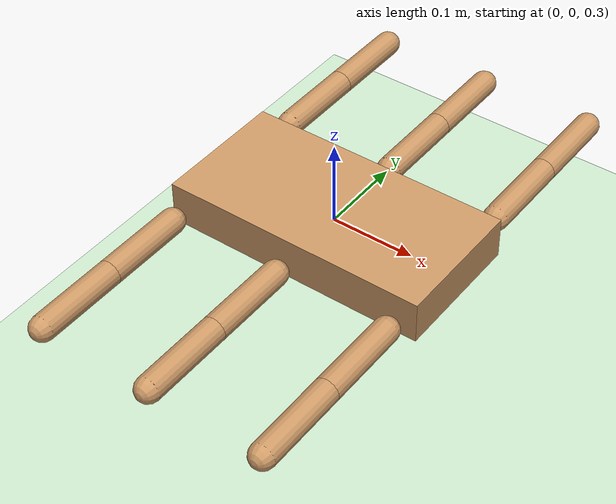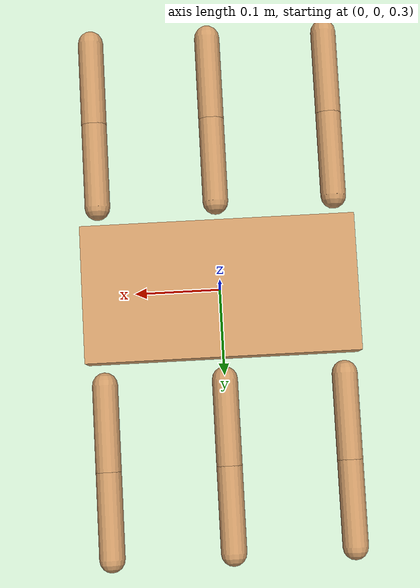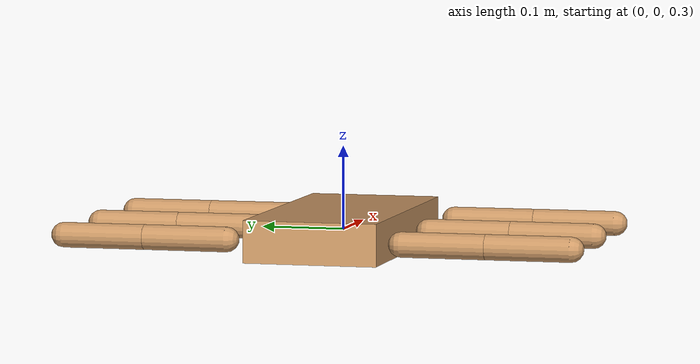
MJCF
<mujoco>

    <compiler angle="degree" coordinate="local" inertiafromgeom="true"/>
    <option integrator="RK4" timestep="0.01"/>

    <default>
        <joint type="hinge" armature="1" damping="1" limited="true"/>
        <motor ctrllimited="true" ctrlrange="-1 1" gear="30"/>
        <geom conaffinity="0" condim="3" density="5.0" friction="1 0.5 0.5" margin="0.005" rgba="0.8 0.6 0.4 1"/>
    </default>

    <asset>
        <texture builtin="gradient" height="100" rgb1="1 1 1" rgb2="0 0 0" type="skybox" width="100"/>
        <texture builtin="flat" height="1278" mark="cross" markrgb="1 1 1" name="texgeom" random="0.01" rgb1="0.8 0.6 0.4" rgb2="0.8 0.6 0.4" type="cube" width="127"/>
        <texture builtin="checker" height="100" name="texplane" rgb1="0 0 0" rgb2="0.8 0.8 0.8" type="2d" width="100"/>
        <material name="MatPlane" reflectance="0.5" shininess="1" specular="1" texrepeat="60 60" texture="texplane"/>
    </asset>

    <worldbody>
        <light cutoff="100" diffuse="1 1 1" dir="-0 0 -1.3" directional="true" exponent="1" pos="0 0 1.3" specular=".1 .1 .1"/>
        <geom conaffinity="1" condim="3" material="MatPlane" name="floor" pos="0 0 0" rgba="0.8 0.9 0.8 1" size="5 5 5" type="plane"/>

        <body name="spyder" pos="0 0 0.3" euler="0 0 0">

            <freejoint/>
            <geom type="box" pos="0 0 0" size="0.16 0.08 0.025"/>
            <body name="leg0" pos="0.14 0.105 0" euler="0 0 0">
                <body name="thigh0" pos="0 0 0">

                    <joint name="thigh0_z" pos="0 0 0" axis="0 0 1" range="-35 35"/>
                    <joint name="thigh0_y" pos="0 0 0" axis="-1 0 0" range="-70 70"/>
                    <geom type="capsule" fromto="0 0 0 0 0.1 0" size="0.015"/>
                    <body name="calf0" pos="0 0.1 0" euler="0 0 0">

                      <joint name="calf0_y" pos="0 0 0" axis="-1 0 0" range="0 120"/>
                      <geom type="capsule" fromto="0 0 0 0 0.1 0" size="0.015"/>

                    </body>
                </body>
            </body>
            <body name="leg1" pos="0.14 -0.105 0" euler="0 0 180">
                <body name="thigh1" pos="0 0 0">

                    <joint name="thigh1_z" pos="0 0 0" axis="0 0 -1" range="-35 35"/>
                    <joint name="thigh1_y" pos="0 0 0" axis="-1 0 0" range="-70 70"/>
                    <geom type="capsule" fromto="0 0 0 0 0.1 0" size="0.015"/>
                    <body name="calf1" pos="0 0.1 0" euler="0 0 0">

                      <joint name="calf1_y" pos="0 0 0" axis="-1 0 0" range="0 120"/>
                      <geom type="capsule" fromto="0 0 0 0 0.1 0" size="0.015"/>

                    </body>
                </body>
            </body>
            <body name="leg2" pos="0 0.105 0" euler="0 0 0">
                <body name="thigh2" pos="0 0 0">

                    <joint name="thigh2_z" pos="0 0 0" axis="0 0 1" range="-35 35"/>
                    <joint name="thigh2_y" pos="0 0 0" axis="-1 0 0" range="-70 70"/>
                    <geom type="capsule" fromto="0 0 0 0 0.1 0" size="0.015"/>
                    <body name="calf2" pos="0 0.1 0" euler="0 0 0">

                      <joint name="calf2_y" pos="0 0 0" axis="-1 0 0" range="0 120"/>
                      <geom type="capsule" fromto="0 0 0 0 0.1 0" size="0.015"/>

                    </body>
                </body>
            </body>
            <body name="leg3" pos="0 -0.105 0" euler="0 0 180">
                <body name="thigh3" pos="0 0 0">

                    <joint name="thigh3_z" pos="0 0 0" axis="0 0 -1" range="-35 35"/>
                    <joint name="thigh3_y" pos="0 0 0" axis="-1 0 0" range="-70 70"/>
                    <geom type="capsule" fromto="0 0 0 0 0.1 0" size="0.015"/>
                    <body name="calf3" pos="0 0.1 0" euler="0 0 0">

                      <joint name="calf3_y" pos="0 0 0" axis="-1 0 0" range="0 120"/>
                      <geom type="capsule" fromto="0 0 0 0 0.1 0" size="0.015"/>

                    </body>
                </body>
            </body>
            <body name="leg4" pos="-0.14 0.105 0" euler="0 0 0">
                <body name="thigh4" pos="0 0 0">

                    <joint name="thigh4_z" pos="0 0 0" axis="0 0 1" range="-35 35"/>
                    <joint name="thigh4_y" pos="0 0 0" axis="-1 0 0" range="-70 70"/>
                    <geom type="capsule" fromto="0 0 0 0 0.1 0" size="0.015"/>
                    <body name="calf4" pos="0 0.1 0" euler="0 0 0">

                      <joint name="calf4_y" pos="0 0 0" axis="-1 0 0" range="0 120"/>
                      <geom type="capsule" fromto="0 0 0 0 0.1 0" size="0.015"/>

                    </body>
                </body>
            </body>
            <body name="leg5" pos="-0.14 -0.105 0" euler="0 0 180">
                <body name="thigh5" pos="0 0 0">

                    <joint name="thigh5_z" pos="0 0 0" axis="0 0 -1" range="-35 35"/>
                    <joint name="thigh5_y" pos="0 0 0" axis="-1 0 0" range="-70 70"/>
                    <geom type="capsule" fromto="0 0 0 0 0.1 0" size="0.015"/>
                    <body name="calf5" pos="0 0.1 0" euler="0 0 0">

                      <joint name="calf5_y" pos="0 0 0" axis="-1 0 0" range="0 120"/>
                      <geom type="capsule" fromto="0 0 0 0 0.1 0" size="0.015"/>

                    </body>
                </body>
            </body>
        </body>

    </worldbody>

    <actuator>
        <motor name="thigh0_y_motor" joint="thigh0_y"/>
        <motor name="thigh1_y_motor" joint="thigh1_y"/>
        <motor name="thigh2_y_motor" joint="thigh2_y"/>
        <motor name="thigh3_y_motor" joint="thigh3_y"/>
        <motor name="thigh4_y_motor" joint="thigh4_y"/>
        <motor name="thigh5_y_motor" joint="thigh5_y"/>

        <motor name="thigh0_z_motor" joint="thigh0_z"/>
        <motor name="thigh1_z_motor" joint="thigh1_z"/>
        <motor name="thigh2_z_motor" joint="thigh2_z"/>
        <motor name="thigh3_z_motor" joint="thigh3_z"/>
        <motor name="thigh4_z_motor" joint="thigh4_z"/>
        <motor name="thigh5_z_motor" joint="thigh5_z"/>

        <motor name="calf0_y_motor" joint="calf0_y"/>
        <motor name="calf1_y_motor" joint="calf1_y"/>
        <motor name="calf2_y_motor" joint="calf2_y"/>
        <motor name="calf3_y_motor" joint="calf3_y"/>
        <motor name="calf4_y_motor" joint="calf4_y"/>
        <motor name="calf5_y_motor" joint="calf5_y"/>
    </actuator>

</mujoco>
